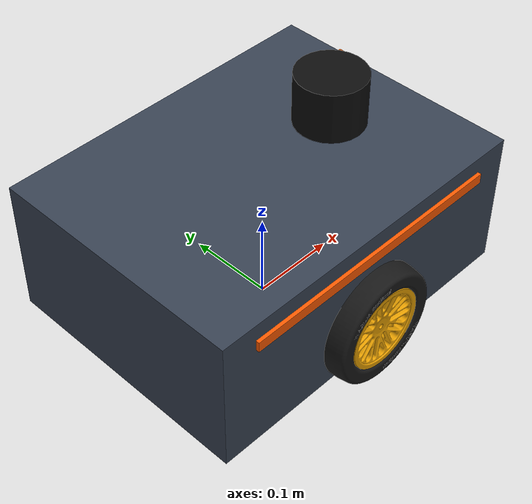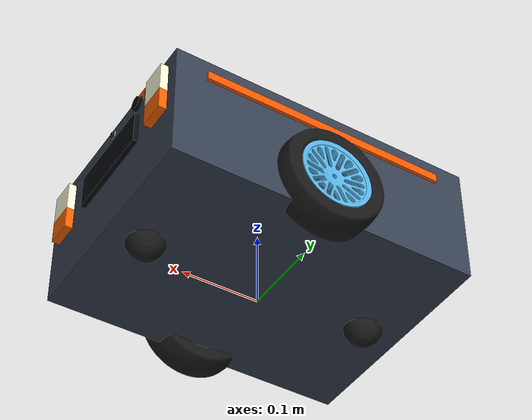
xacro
<?xml version="1.0"?>
<robot name="itmrbot" xmlns:xacro="http://www.ros.org/wiki/xacro">

<xacro:include filename="$(find itmr_description)/urdf/robot_gazebo.xacro" />
<xacro:include filename="$(find itmr_description)/urdf/sensors/lidar.xacro"/>
<xacro:include filename="$(find itmr_description)/urdf/sensors/camera.xacro"/>
<xacro:include filename="$(find itmr_description)/urdf/sensors/imu.xacro"/>
<xacro:include filename="$(find itmr_description)/urdf/sensors/thermal_camera.xacro"/>

<!-- Sensörleri robota bağla -->
<xacro:lidar parent="base_link"/>
<xacro:camera parent="base_link"/>
<xacro:imu parent="base_link"/>
<xacro:thermal_camera parent="base_link"/>

<!-- taban referans noktası -->
<link name="base_footprint"/>

<!-- gövde -->
<link name="base_link">
    <visual>
        <origin xyz="0 0 0" rpy="0 0 0" />
        <geometry>
            <box size="0.4 0.3 0.16" />
        </geometry>
        <material name="material_name">
            <color rgba="0.216 0.255 0.318 1.0" />
        </material>
    </visual>
    <collision>
        <origin xyz="0 0 0" rpy="0 0 0" />
        <geometry>
            <box size="0.4 0.3 0.16" />
        </geometry>
    </collision>
    <inertial>
        <mass value="5.0" />
        <origin xyz="0 0 0" />
        <inertia ixx="0.048167" ixy="0.0" ixz="0.0" iyy="0.077333" iyz="0.0" izz="0.104167"/>
    </inertial>
</link>

<joint name="base_joint" type="fixed">
    <parent link="base_footprint" />
    <child link="base_link" />
    <origin xyz="0 0 0.1" rpy="0 0 0" />
</joint>

<!-- sağ tekerlek -->
<link name="wheel_right_link">
    <visual>
        <origin xyz="-0.06675 0.02325 -0.06675" rpy="1.570796327 0 0" />
        <geometry>
            <mesh filename="package://itmr_description/meshes/tire.stl"
                  scale="0.0015 0.0015 0.0015" />
        </geometry>
        <material name="wheel_right_material">
            <color rgba="0.09 0.09 0.09 1.0" />
        </material>
    </visual>
    <visual>
        <origin xyz="0.0465 -0.02175 -0.0465" rpy="0 0 1.570796327" />
        <geometry>
            <mesh filename="package://itmr_description/meshes/rim.stl"
                  scale="0.0015 0.0015 0.0015" />
        </geometry>
    </visual>
    <collision>
        <origin xyz="0 0 0" rpy="1.570796327 0 0" />
        <geometry>
            <cylinder radius="0.06675" length="0.0465" />
        </geometry>
    </collision>
    <inertial>
        <mass value="0.2" />
        <origin xyz="0 0 0" />
        <inertia ixx="0.00025882" ixy="0.0" ixz="0.0" iyy="0.00044556" iyz="0.0" izz="0.00025882"/>
    </inertial>
</link>

<joint name="wheel_right_joint" type="continuous">
    <parent link="base_link" />
    <child link="wheel_right_link" />
    <origin xyz="0 -0.15 -0.03325" rpy="0 0 0" />
    <axis xyz="0 1 0" />
</joint>

<!-- sol tekerlek -->
<link name="wheel_left_link">
    <visual>
        <origin xyz="-0.06675 0.02325 -0.06675" rpy="1.570796327 0 0" />
        <geometry>
            <mesh filename="package://itmr_description/meshes/tire.stl"
                  scale="0.0015 0.0015 0.0015" />
        </geometry>
        <material name="wheel_left_material">
            <color rgba="0.09 0.09 0.09 1.0" />
        </material>
    </visual>
    <visual>
        <origin xyz="-0.0465 0.02175 -0.0465" rpy="0 0 -1.570796327" />
        <geometry>
            <mesh filename="package://itmr_description/meshes/rim.stl"
                  scale="0.0015 0.0015 0.0015" />
        </geometry>
    </visual>
    <collision>
        <origin xyz="0 0 0" rpy="1.570796327 0 0" />
        <geometry>
            <cylinder radius="0.06675" length="0.0465" />
        </geometry>
    </collision>
    <inertial>
        <origin xyz="0 0 0" rpy="0 0 0" />
        <mass value="0.2" />
        <inertia ixx="0.00025882" ixy="0.0" ixz="0.0" iyy="0.00044556" iyz="0.0" izz="0.00025882"/>
    </inertial>
</link>

<joint name="wheel_left_joint" type="continuous">
    <parent link="base_link" />
    <child link="wheel_left_link" />
    <origin xyz="0 0.15 -0.03325" rpy="0 0 0" />
    <axis xyz="0 1 0" />
</joint>

<!-- ön caster -->
<link name="front_caster_link">
    <visual>
        <origin xyz="0 0 0" rpy="0 0 0" />
        <geometry>
            <sphere radius="0.025" />
        </geometry>
        <material name="caster_material">
            <color rgba="0.09 0.09 0.09 1.0" />
        </material>
    </visual>
    <collision>
        <origin xyz="0 0 0" rpy="0 0 0" />
        <geometry>
            <sphere radius="0.025" />
        </geometry>
    </collision>
    <inertial>
        <origin xyz="0 0 0" rpy="0 0 0" />
        <mass value="0.1" />
        <inertia ixx="0.000025" ixy="0.0" ixz="0.0" iyy="0.000025" iyz="0.0" izz="0.000025"/>
    </inertial>
</link>

<joint name="front_caster_joint" type="fixed">
    <parent link="base_link" />
    <child link="front_caster_link" />
    <origin xyz="0.15 0 -0.075" rpy="0 0 0" />
</joint>

<!-- arka caster -->
<link name="rear_caster_link">
    <visual>
        <origin xyz="0 0 0" rpy="0 0 0" />
        <geometry>
            <sphere radius="0.025" />
        </geometry>
        <material name="caster_material">
            <color rgba="0.09 0.09 0.09 1.0" />
        </material>
    </visual>
    <collision>
        <origin xyz="0 0 0" rpy="0 0 0" />
        <geometry>
            <sphere radius="0.025" />
        </geometry>
    </collision>
    <inertial>
        <origin xyz="0 0 0" rpy="0 0 0" />
        <mass value="0.1" />
        <inertia ixx="0.000025" ixy="0.0" ixz="0.0" iyy="0.000025" iyz="0.0" izz="0.000025"/>
    </inertial>
</link>

<joint name="rear_caster_joint" type="fixed">
    <parent link="base_link" />
    <child link="rear_caster_link" />
    <origin xyz="-0.15 0 -0.075" rpy="0 0 0" />
</joint>

<!-- SOL BEYAZ FAR -->
<link name="front_left_white_light_link">
    <visual>
        <geometry>
            <box size="0.01 0.035 0.04"/>
        </geometry>
        <material name="headlight_white">
            <color rgba="1.0 1.0 0.85 1.0"/>
        </material>
    </visual>
</link>

<joint name="front_left_white_light_joint" type="fixed">
    <parent link="base_link"/>
    <child link="front_left_white_light_link"/>
    <origin xyz="0.205 0.115 0.045" rpy="0 0 0"/>
</joint>

<!-- SOL TURUNCU SİNYAL -->
<link name="front_left_indicator_link">
    <visual>
        <geometry>
            <box size="0.01 0.035 0.03"/>
        </geometry>
        <material name="indicator_orange">
            <color rgba="1.0 0.4 0.0 1.0"/>
        </material>
    </visual>
</link>

<joint name="front_left_indicator_joint" type="fixed">
    <parent link="base_link"/>
    <child link="front_left_indicator_link"/>
    <origin xyz="0.205 0.115 0.010" rpy="0 0 0"/>
</joint>

<!-- SAĞ BEYAZ FAR -->
<link name="front_right_white_light_link">
    <visual>
        <geometry>
            <box size="0.01 0.035 0.04"/>
        </geometry>
        <material name="headlight_white">
            <color rgba="1.0 1.0 0.85 1.0"/>
        </material>
    </visual>
</link>

<joint name="front_right_white_light_joint" type="fixed">
    <parent link="base_link"/>
    <child link="front_right_white_light_link"/>
    <origin xyz="0.205 -0.115 0.045" rpy="0 0 0"/>
</joint>

<!-- SAĞ TURUNCU SİNYAL -->
<link name="front_right_indicator_link">
    <visual>
        <geometry>
            <box size="0.01 0.035 0.03"/>
        </geometry>
        <material name="indicator_orange">
            <color rgba="1.0 0.4 0.0 1.0"/>
        </material>
    </visual>
</link>

<joint name="front_right_indicator_joint" type="fixed">
    <parent link="base_link"/>
    <child link="front_right_indicator_link"/>
    <origin xyz="0.205 -0.115 0.010" rpy="0 0 0"/>
</joint>

<!-- Sol turuncu şerit -->
<link name="left_accent_link">
    <visual>
        <geometry>
            <box size="0.32 0.004 0.012"/>
        </geometry>
        <material name="accent_orange_left">
            <color rgba="1.0 0.35 0.0 1.0"/>
        </material>
    </visual>
</link>

<joint name="left_accent_joint" type="fixed">
    <parent link="base_link"/>
    <child link="left_accent_link"/>
    <origin xyz="0 0.152 0.055" rpy="0 0 0"/>
</joint>

<!-- Sağ turuncu şerit -->
<link name="right_accent_link">
    <visual>
        <geometry>
            <box size="0.32 0.004 0.012"/>
        </geometry>
        <material name="accent_orange_right">
            <color rgba="1.0 0.35 0.0 1.0"/>
        </material>
    </visual>
</link>

<joint name="right_accent_joint" type="fixed">
    <parent link="base_link"/>
    <child link="right_accent_link"/>
    <origin xyz="0 -0.152 0.055" rpy="0 0 0"/>
</joint>

<!-- Ön dekoratif panel -->
<link name="front_panel_link">
    <visual>
        <geometry>
            <box size="0.006 0.13 0.045"/>
        </geometry>
        <material name="front_panel_black">
            <color rgba="0.035 0.045 0.06 1.0"/>
        </material>
    </visual>
</link>

<joint name="front_panel_joint" type="fixed">
    <parent link="base_link"/>
    <child link="front_panel_link"/>
    <origin xyz="0.203 0 0.025" rpy="0 0 0"/>
</joint>

</robot>

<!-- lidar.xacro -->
<robot xmlns:xacro="http://www.ros.org/wiki/xacro" name="itmrbot">
    <xacro:macro name="lidar" params="parent">

        <link name="lidar_link">
            <visual>
                <origin xyz="0 0 0" rpy="0 0 0" />
                <geometry>
                    <cylinder radius="0.04" length="0.06" />
                </geometry>
                <material name="lidar_material">
                    <color rgba="0.05 0.05 0.05 1.0" />
                </material>
            </visual>
            <collision>
                <origin xyz="0 0 0" rpy="0 0 0" />
                <geometry>
                    <cylinder radius="0.04" length="0.06" />
                </geometry>
            </collision>
            <inertial>
                <mass value="0.1" />
                <origin xyz="0 0 0" rpy="0 0 0" />
                <inertia ixx="0.00007" ixy="0.0" ixz="0.0" iyy="0.00007" iyz="0.0" izz="0.00008" />
            </inertial>
        </link>

        <joint name="lidar_joint" type="fixed">
            <parent link="${parent}" />
            <child link="lidar_link" />
            <origin xyz="0.10 0 0.11" rpy="0 0 0" />
        </joint>

        <gazebo reference="lidar_link">
            <sensor name="lidar" type="gpu_lidar">
                <pose>0 0 0 0 0 0</pose>
                <topic>scan</topic>
                <gz_frame_id>lidar_link</gz_frame_id>
                <update_rate>10</update_rate>
                <always_on>true</always_on>
                <visualize>false</visualize>
                <lidar>
                    <scan>
                        <horizontal>
                            <samples>360</samples>
                            <resolution>1</resolution>
                            <min_angle>-3.14159</min_angle>
                            <max_angle>3.14159</max_angle>
                        </horizontal>
                    </scan>
                    <range>
                        <min>0.12</min>
                        <max>8.0</max>
                        <resolution>0.01</resolution>
                    </range>
                    <noise>
                        <type>gaussian</type>
                        <mean>0.0</mean>
                        <stddev>0.01</stddev>
                    </noise>
                </lidar>
            </sensor>
        </gazebo>

    </xacro:macro>
</robot>

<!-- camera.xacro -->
<robot xmlns:xacro="http://www.ros.org/wiki/xacro" name="itmrbot">
    <xacro:macro name="camera" params="parent">
        <link name="camera_link">
            <!-- Yeşil PCB: 25 x 24 mm -->
            <visual>
                <origin xyz="0 0 0" rpy="0 0 0"/>
                <geometry>
                    <box size="0.001 0.025 0.024"/>
                </geometry>
                <material name="camera_pcb">
                    <color rgba="0.05 0.35 0.15 1.0"/>
                </material>
            </visual>
            <!-- Gri kutu -->
            <visual>
                <origin xyz="0.0015 0 0" rpy="0 0 0"/>
                <geometry>
                    <box size="0.003 0.0085 0.0085"/>
                </geometry>
                <material name="camera_body">
                    <color rgba="0.55 0.55 0.58 1.0"/>
                </material>
            </visual>
            <!-- Lens -->
            <visual>
                <origin xyz="0.004 0 0" rpy="0 1.570796327 0"/>
                <geometry>
                    <cylinder radius="0.004" length="0.002"/>
                </geometry>
                <material name="camera_lens">
                    <color rgba="0.02 0.02 0.03 1.0"/>
                </material>
            </visual>
            <inertial>
                <origin xyz="0.002 0 0" rpy="0 0 0"/>
                <mass value="0.004"/>
                <inertia ixx="4.0e-7" ixy="0.0" ixz="0.0"
                         iyy="2.04e-7" iyz="0.0"
                         izz="2.2e-7"/>
            </inertial>
        </link>

        <joint name="camera_joint" type="fixed">
            <parent link="${parent}"/>
            <child link="camera_link"/>
            <origin xyz="0.1990 0 0.068" rpy="0 0 0"/>
        </joint>

        <!-- ROS kamera merkezi (Z ileri, X sağ, Y aşağı) -->
        <link name="camera_optical_frame"/>

        <joint name="camera_optical_joint" type="fixed">
            <parent link="camera_link"/>
            <child link="camera_optical_frame"/>
            <origin xyz="0.0055 0 0" rpy="-1.570796327 0 -1.570796327"/>
        </joint>

        <gazebo reference="camera_link">
            <sensor name="rpicam_module3" type="camera">
                <always_on>true</always_on>
                <update_rate>30</update_rate>
                <visualize>false</visualize>
                <topic>camera/image_raw</topic>
                <gz_frame_id>camera_optical_frame</gz_frame_id>
                <pose>0.0055 0 0 0 0 0</pose>
                <camera>
                    <horizontal_fov>1.15</horizontal_fov>
                    <image>
                        <width>1280</width>
                        <height>720</height>
                        <format>R8G8B8</format>
                    </image>
                    <clip>
                        <!--5cm - 100m arası görüntüler-->
                        <near>0.05</near>
                        <far>100.0</far>
                    </clip>
                </camera>
            </sensor>
        </gazebo>

    </xacro:macro>
</robot>

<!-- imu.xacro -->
<robot xmlns:xacro="http://www.ros.org/wiki/xacro" name="itmrbot">
    <xacro:macro name="imu" params="parent">

        <!-- IMU gövdenin tam ortasında: tekerlek ekseninin üstü, yani dönme merkezi -->
        <link name="imu_link">
            <visual>
                <geometry>
                    <box size="0.03 0.03 0.01"/>
                </geometry>
                <material name="imu_green">
                    <color rgba="0.1 0.6 0.2 1.0"/>
                </material>
            </visual>
        </link>

        <joint name="imu_joint" type="fixed">
            <parent link="${parent}"/>
            <child link="imu_link"/>
            <origin xyz="0 0 0" rpy="0 0 0"/>
        </joint>

        <!-- Gazebo IMU sensörü: /imu topic'ine 100 Hz yayın yapar -->
        <gazebo reference="imu_link">
            <sensor name="imu_sensor" type="imu">
                <always_on>true</always_on>
                <update_rate>100</update_rate>
                <visualize>true</visualize>
                <topic>imu</topic>
                <!-- fixed joint base_link'e birleştiği için frame adını elle veriyoruz -->
                <gz_frame_id>imu_link</gz_frame_id>
                <imu>
                    <angular_velocity>
                        <x><noise type="gaussian"><mean>0.0</mean><stddev>2.44e-3</stddev><bias_mean>0.0</bias_mean><bias_stddev>6e-3</bias_stddev></noise></x>
                        <y><noise type="gaussian"><mean>0.0</mean><stddev>2.44e-3</stddev><bias_mean>0.0</bias_mean><bias_stddev>6e-3</bias_stddev></noise></y>
                        <z><noise type="gaussian"><mean>0.0</mean><stddev>2.44e-3</stddev><bias_mean>0.0</bias_mean><bias_stddev>6e-3</bias_stddev></noise></z>
                    </angular_velocity>
                    <linear_acceleration>
                        <x><noise type="gaussian"><mean>0.0</mean><stddev>1.72e-2</stddev><bias_mean>0.0</bias_mean><bias_stddev>6.5e-2</bias_stddev></noise></x>
                        <y><noise type="gaussian"><mean>0.0</mean><stddev>1.72e-2</stddev><bias_mean>0.0</bias_mean><bias_stddev>6.5e-2</bias_stddev></noise></y>
                        <z><noise type="gaussian"><mean>0.0</mean><stddev>1.72e-2</stddev><bias_mean>0.0</bias_mean><bias_stddev>6.5e-2</bias_stddev></noise></z>
                    </linear_acceleration>
                </imu>
            </sensor>
        </gazebo>

    </xacro:macro>
</robot>

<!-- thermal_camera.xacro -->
<robot xmlns:xacro="http://www.ros.org/wiki/xacro" name="itmrbot">
    <xacro:macro name="thermal_camera" params="parent">

        <link name="thermal_camera_link">
            <visual>
                <origin xyz="0 0 0" rpy="0 0 0"/>
                <geometry>
                    <box size="0.012 0.030 0.030"/>
                </geometry>
                <material name="thermal_camera_body">
                    <color rgba="0.85 0.35 0.05 1.0"/>
                </material>
            </visual>
            <visual>
                <origin xyz="0.008 0 0" rpy="0 1.570796327 0"/>
                <geometry>
                    <cylinder radius="0.009" length="0.005"/>
                </geometry>
                <material name="thermal_camera_lens">
                    <color rgba="0.02 0.02 0.03 1.0"/>
                </material>
            </visual>
            <inertial>
                <origin xyz="0 0 0" rpy="0 0 0"/>
                <mass value="0.01"/>
                <inertia ixx="1.5e-6" ixy="0.0" ixz="0.0"
                         iyy="1.0e-6" iyz="0.0"
                         izz="1.0e-6"/>
            </inertial>
        </link>

        <joint name="thermal_camera_joint" type="fixed">
            <parent link="${parent}"/>
            <child link="thermal_camera_link"/>
            <origin xyz="0.194 0.06 0.068" rpy="0 0 0"/>
        </joint>

        <link name="thermal_camera_optical_frame"/>

        <joint name="thermal_camera_optical_joint" type="fixed">
            <parent link="thermal_camera_link"/>
            <child link="thermal_camera_optical_frame"/>
            <origin xyz="0.006 0 0" rpy="-1.570796327 0 -1.570796327"/>
        </joint>

        <gazebo reference="thermal_camera_link">
            <sensor name="thermal_camera" type="thermal">
                <always_on>true</always_on>
                <update_rate>10</update_rate>
                <visualize>false</visualize>
                <topic>thermal/image_raw</topic>
                <gz_frame_id>thermal_camera_optical_frame</gz_frame_id>
                <pose>0.006 0 0 0 0 0</pose>
                <camera>
                    <horizontal_fov>1.047</horizontal_fov>
                    <image>
                        <width>320</width>
                        <height>240</height>
                        <format>L8</format>
                    </image>
                    <clip>
                        <near>0.1</near>
                        <far>20.0</far>
                    </clip>
                </camera>
                <plugin filename="gz-sim-thermal-sensor-system" name="gz::sim::systems::ThermalSensor">
                    <min_temp>273.15</min_temp>
                    <max_temp>400.0</max_temp>
                    <resolution>1.6</resolution>
                </plugin>
            </sensor>
        </gazebo>

    </xacro:macro>
</robot>
